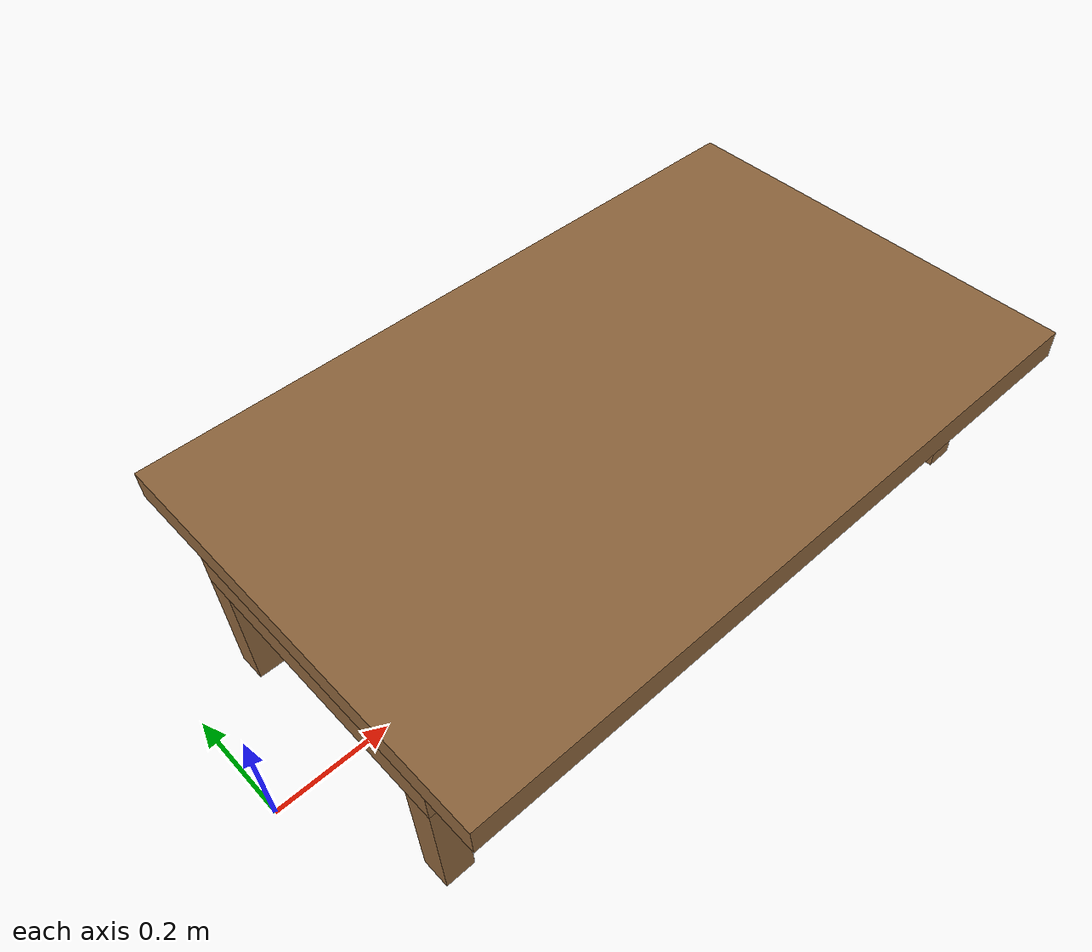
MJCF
<mujoco>
  <!-- Assets (textures & materials) -->
  <asset>
    <!-- Update these file paths if your texture folder differs -->
    <texture name="T_simpleWoodTable" type="cube" height="1" width="1"
             file="assets/wood1.png"/>
    <material name="M_simpleWoodTable" texture="T_simpleWoodTable"
              rgba="0.8 0.8 0.8 1" shininess="0.2" reflectance="0.3" texuniform="false"/>
  </asset>

  <!-- Defaults used by the table body -->
  <default>
    <default class="viz_simpleWoodTable">
      <geom group="1" contype="0" conaffinity="0" type="mesh" material="M_simpleWoodTable"/>
    </default>
    <default class="body_simpleTable">
      <geom contype="1" conaffinity="1" group="4" rgba=".4 .5 .6 1"/>
      <joint limited="true" damping="1" frictionloss="0.5" armature=".01"/>
    </default>
  </default>

  <!-- The table geometry -->
  <worldbody>
    <!-- Place the table at x=0.70 so it’s next to the UR5e base at the origin -->
    <body name="simpleWoodTable" pos="0.70 0 0" childclass="body_simpleTable">
      <!-- Visual geoms (use viz_* classes if you want textured mesh geoms; here we keep boxes for simplicity) -->
      <geom class="viz_simpleWoodTable" type="box" size=".6 .375 .025" pos="0 0 0.335"/>
      <geom class="viz_simpleWoodTable" type="box" size="0.59 0.26 .05" pos="0 0 0.26"/>
      <geom class="viz_simpleWoodTable" type="box" size="0.025 0.025 0.105" pos="-0.565 0.235 0.105"/>
      <geom class="viz_simpleWoodTable" type="box" size="0.025 0.025 0.105" pos="-0.565 -0.235 0.105"/>
      <geom class="viz_simpleWoodTable" type="box" size="0.025 0.025 0.105" pos="0.565 0.235 0.105"/>
      <geom class="viz_simpleWoodTable" type="box" size="0.025 0.025 0.105" pos="0.565 -0.235 0.105"/>

      <!-- Collidable geoms -->
      <geom type="box" size=".6 .375 .025" pos="0 0 0.335" mass="40"/>
      <geom type="box" size="0.59 0.26 .05" pos="0 0 0.26"/>
      <geom type="box" size="0.025 0.025 0.105" pos="-0.565 0.235 0.105"/>
      <geom type="box" size="0.025 0.025 0.105" pos="-0.565 -0.235 0.105"/>
      <geom type="box" size="0.025 0.025 0.105" pos="0.565 0.235 0.105"/>
      <geom type="box" size="0.025 0.025 0.105" pos="0.565 -0.235 0.105"/>
    </body>
  </worldbody>
</mujoco>
